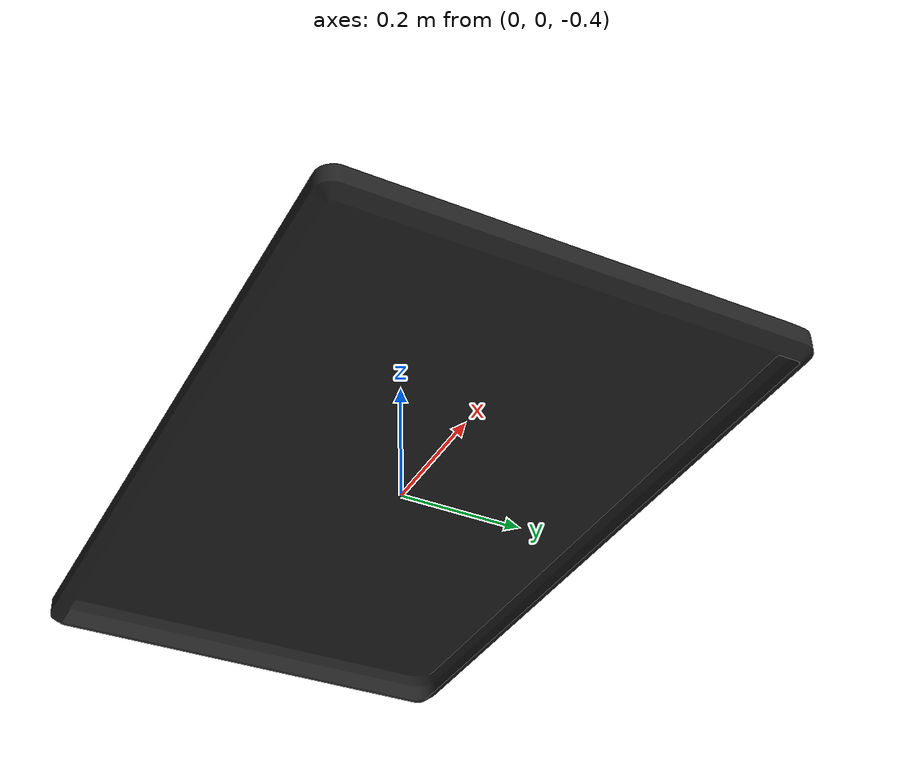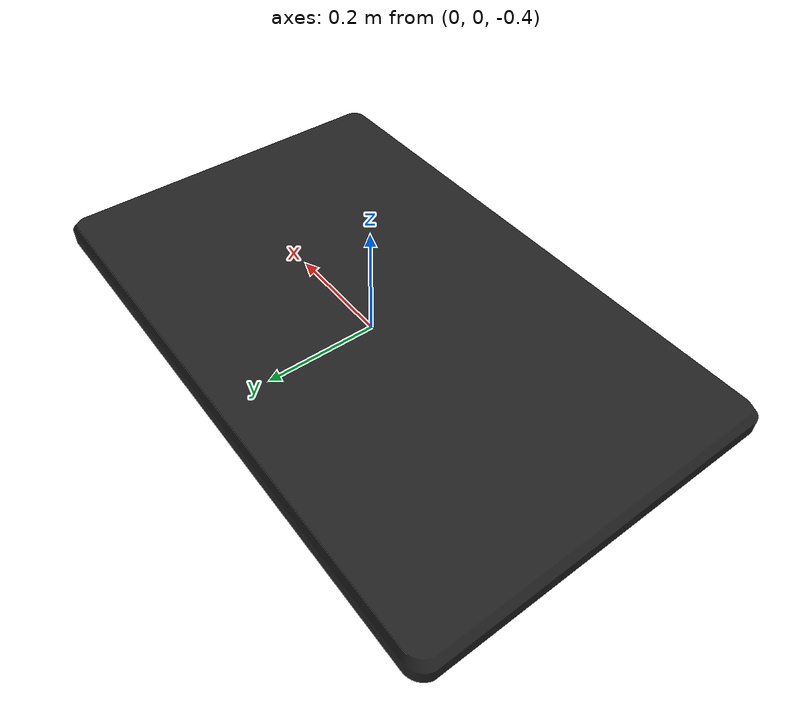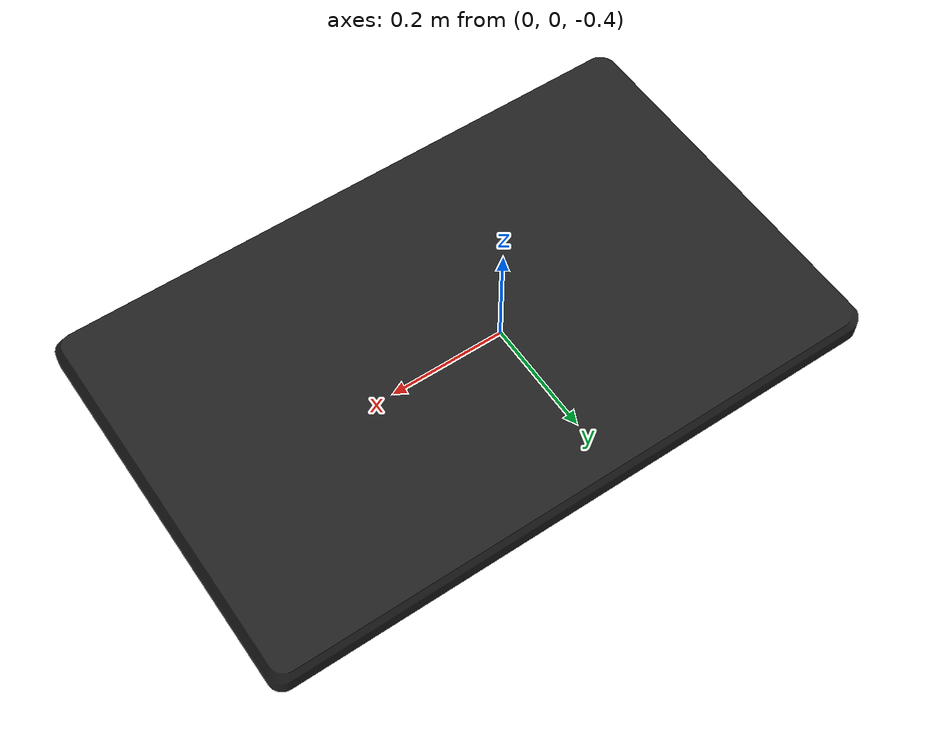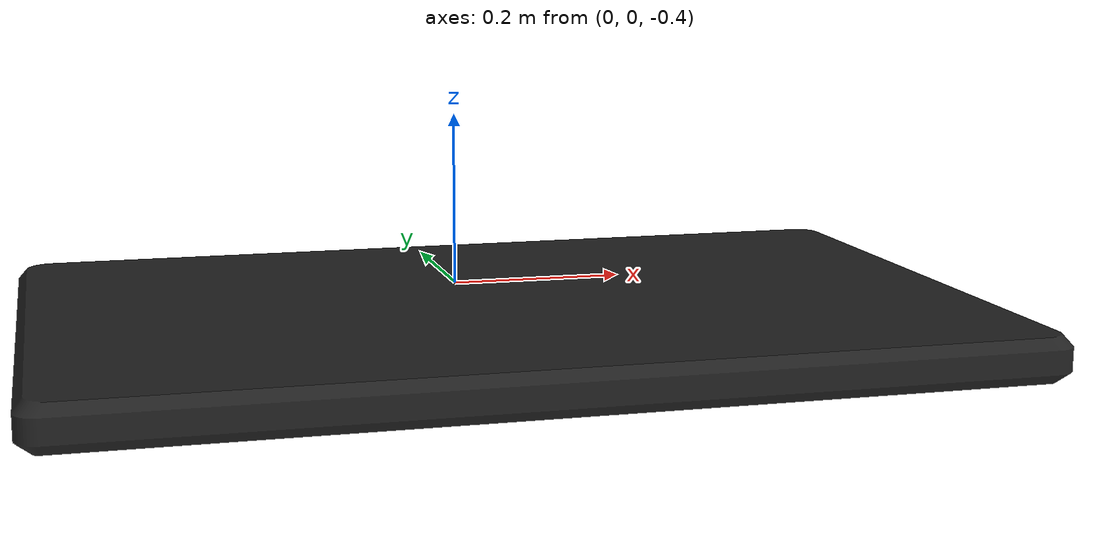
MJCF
<mujoco model="original-101">
  <default>
    <default class="visual">
      <geom group="2" type="mesh" contype="0" conaffinity="0"/>
    </default>
    <default class="collision">
      <geom group="3" type="mesh"/>
    </default>
  </default>
  <asset>
    <material name="material_0_0" specular="0.06666666666666667" shininess="0.03" rgba="0.13333333333333333 0.13333333333333333 0.13333333333333333 1"/>
    <mesh file="original-101.obj"/>
  </asset>
  <worldbody>
    <body name="original-101">
      <geom material="material_0_0" mesh="original-101" class="visual"/>
      <geom mesh="original-101" class="collision"/>
    </body>
  </worldbody>
</mujoco>
